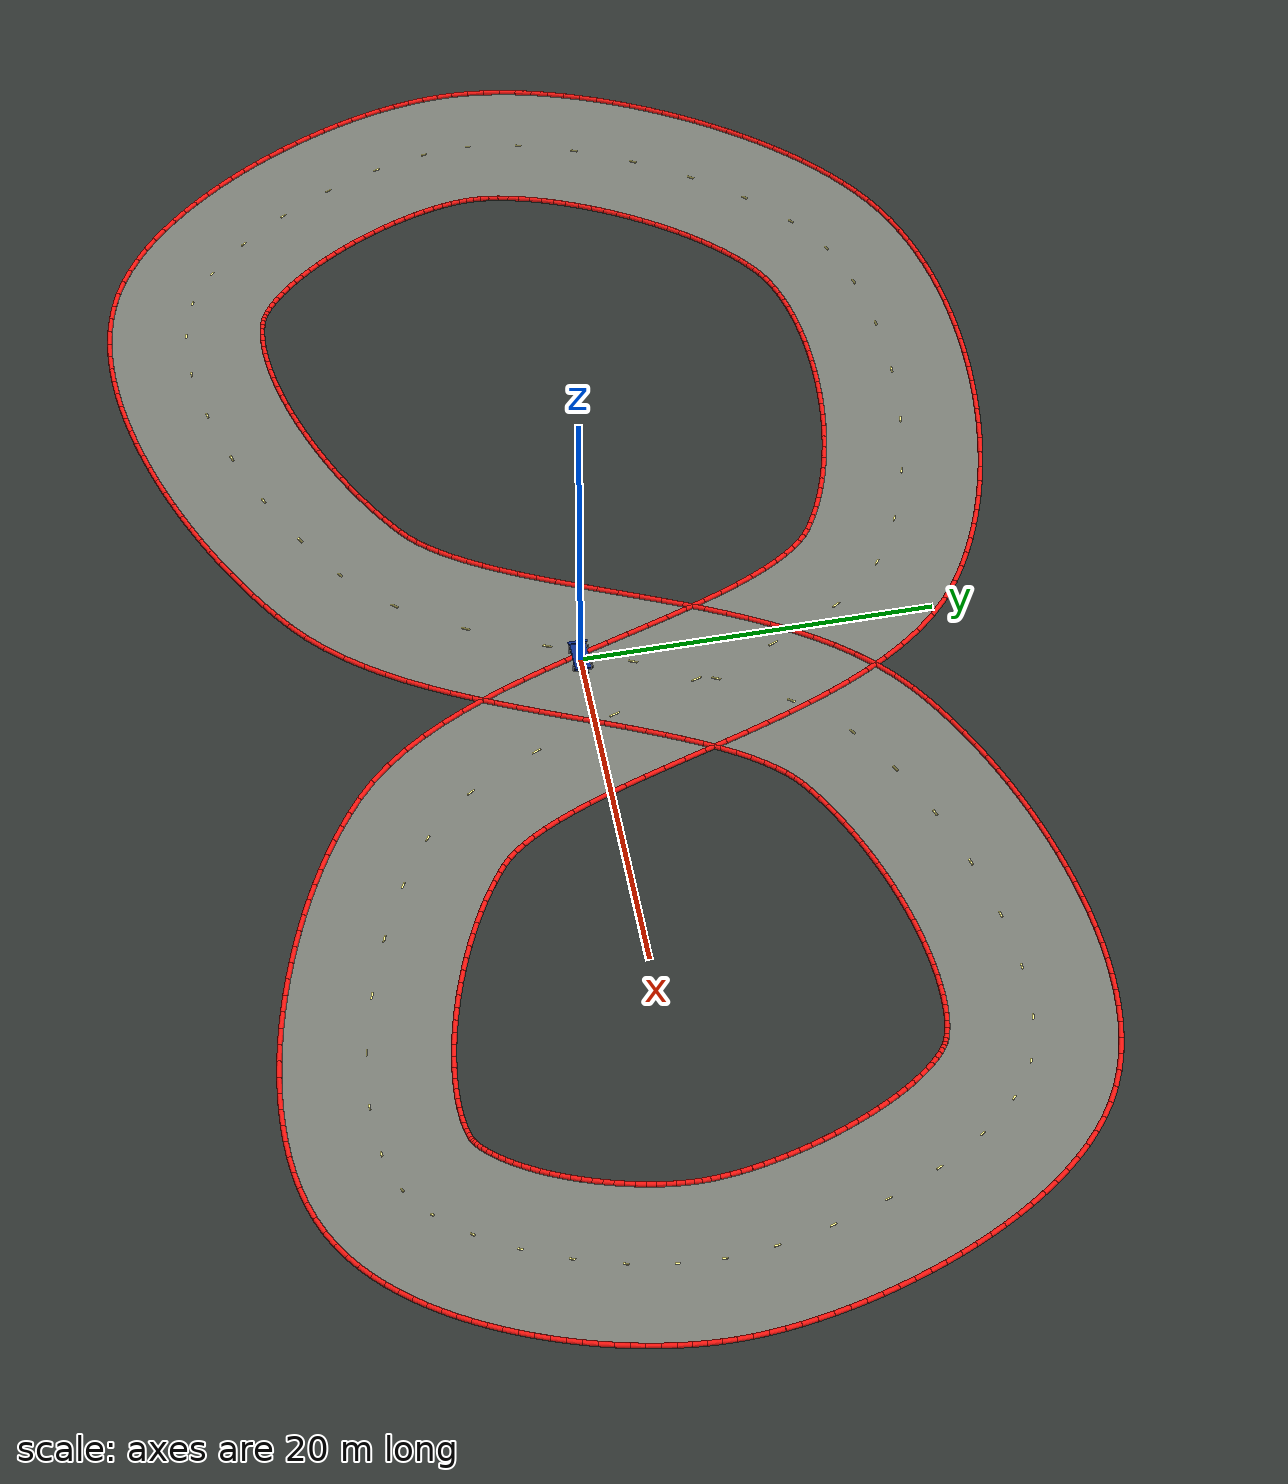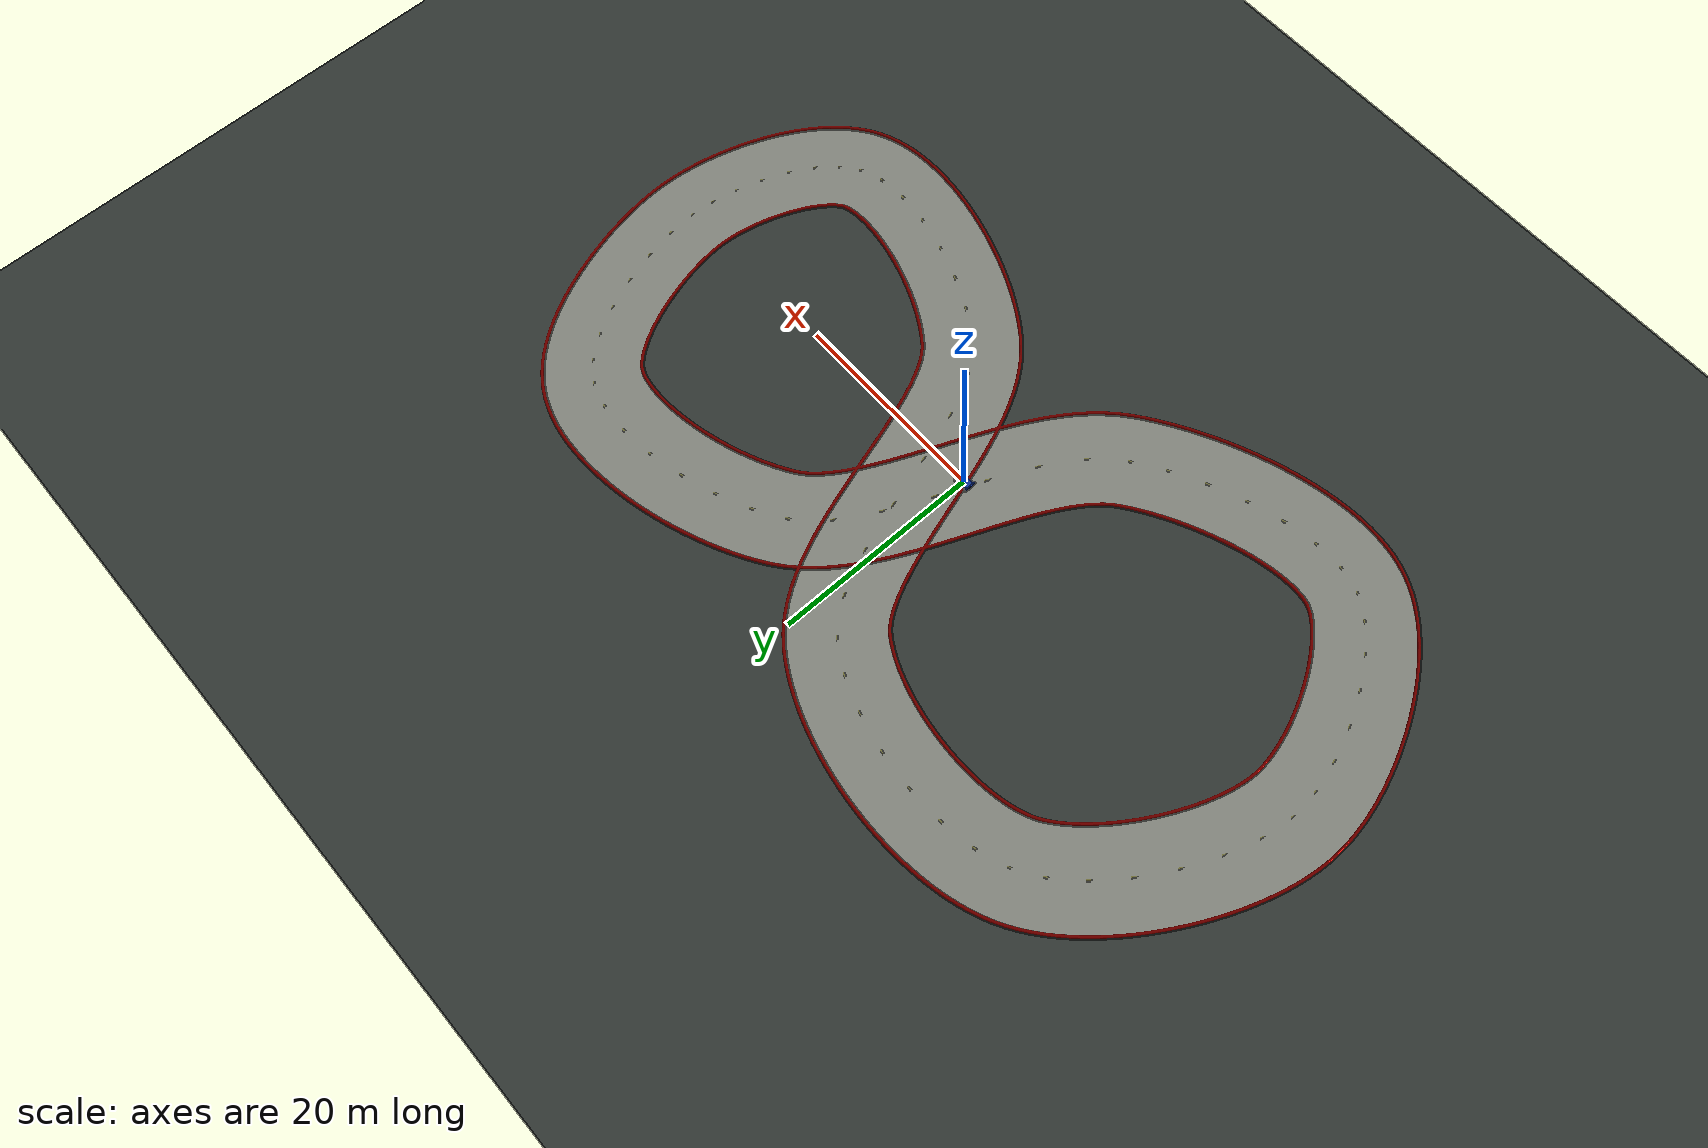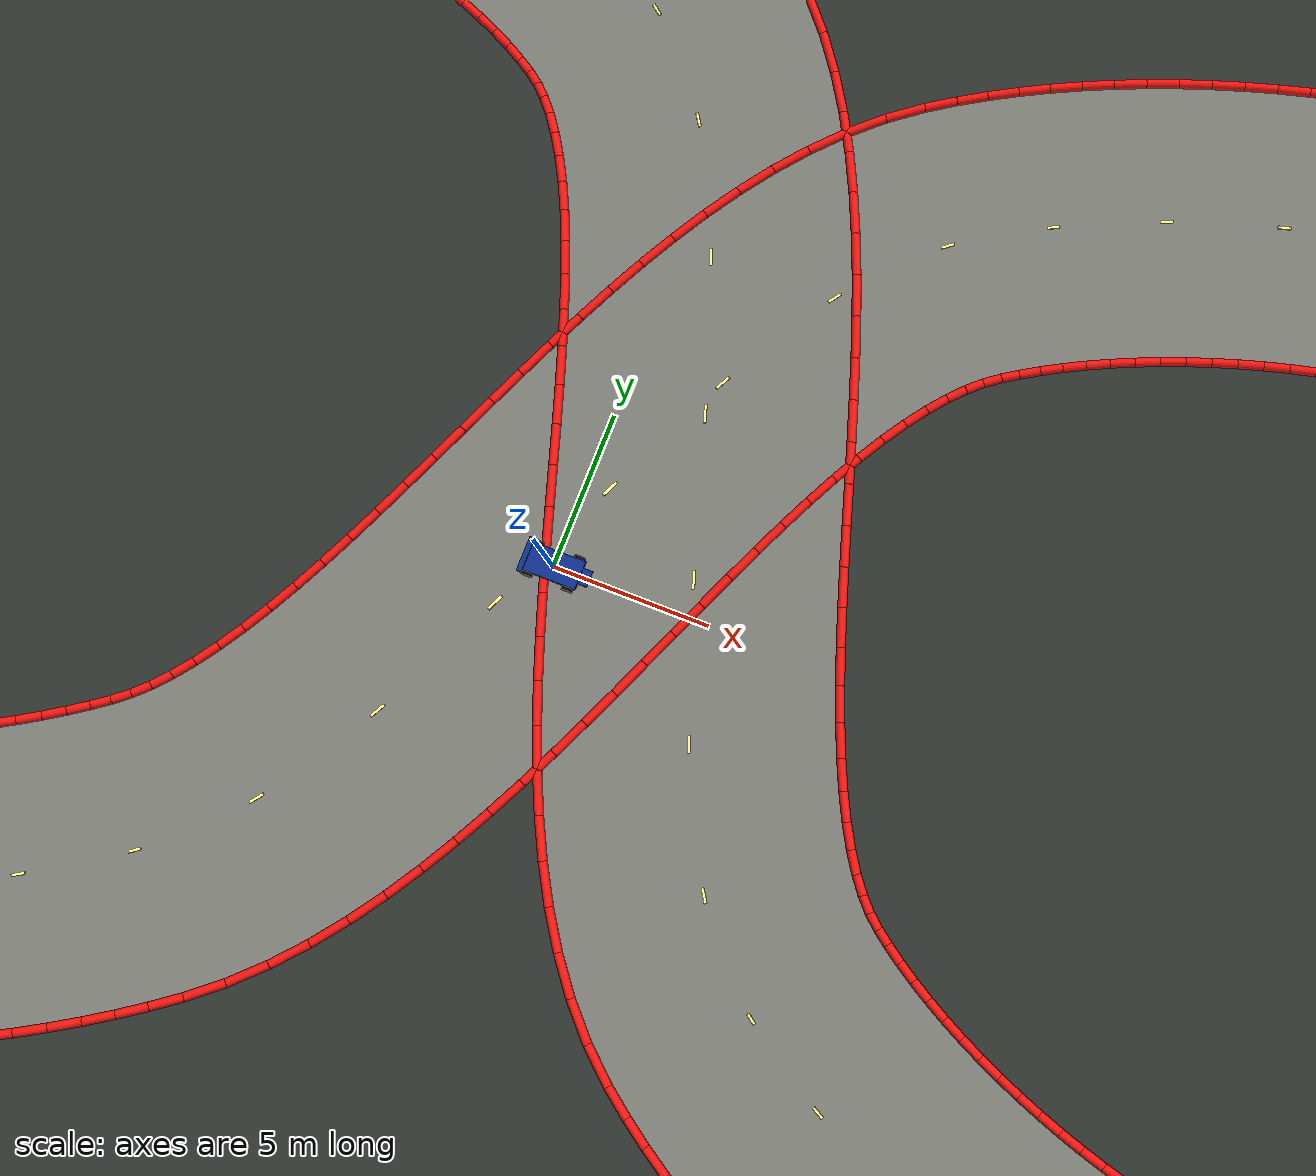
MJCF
<mujoco model="racesim_s_curve_world">
  <compiler angle="degree" autolimits="true"/>
  <option timestep="0.02" gravity="0 0 -9.81"/>
  <visual>
    <global offwidth="1280" offheight="960"/>
    <headlight ambient="0.35 0.35 0.35" diffuse="0.8 0.8 0.8"/>
  </visual>

  <include file="car.xml"/>
  <include file="s_curve_track.xml"/>

  <asset>
    <texture name="grid" type="2d" builtin="checker" width="512" height="512"
             rgb1="0.16 0.18 0.17" rgb2="0.20 0.22 0.21"/>
    <material name="ground" texture="grid" texrepeat="12 12" reflectance="0.05"/>
  </asset>

  <worldbody>
    <light name="sun" pos="0 0 30" dir="0 0 -1" diffuse="1.0 1.0 1.0" ambient="0.25 0.25 0.25"/>
    <geom name="ground" type="plane" size="90 90 0.1" material="ground"/>
    <camera name="topdown" pos="0 0 125" xyaxes="1 0 0 0 1 0" fovy="42"/>
    <camera name="follow" mode="trackcom" target="car" pos="-5 0 3" xyaxes="0 -1 0 0.5 0 0.866"/>
  </worldbody>
</mujoco>

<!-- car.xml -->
<mujoco model="simple_car">
  <default>
    <geom friction="1.2 0.02 0.001" density="600"/>
    <joint damping="0.1"/>
  </default>

  <asset>
    <material name="chassis_blue" rgba="0.05 0.18 0.55 1"/>
    <material name="wheel_dark" rgba="0.02 0.02 0.025 1"/>
  </asset>

  <worldbody>
    <body name="car" pos="0 0 0.28">
      <freejoint name="root"/>
      <geom name="chassis" type="box" size="0.9 0.45 0.12" material="chassis_blue"/>
      <geom name="nose" type="box" pos="0.75 0 0.02" size="0.45 0.25 0.06" material="chassis_blue"/>
      <geom name="rear_wing" type="box" pos="-0.85 0 0.22" size="0.08 0.55 0.04" material="chassis_blue"/>

      <body name="front_left_wheel" pos="0.65 0.48 -0.12">
        <joint name="front_left_spin" type="hinge" axis="0 1 0"/>
        <geom type="cylinder" size="0.18 0.08" euler="90 0 0" material="wheel_dark"/>
      </body>
      <body name="front_right_wheel" pos="0.65 -0.48 -0.12">
        <joint name="front_right_spin" type="hinge" axis="0 1 0"/>
        <geom type="cylinder" size="0.18 0.08" euler="90 0 0" material="wheel_dark"/>
      </body>
      <body name="rear_left_wheel" pos="-0.65 0.48 -0.12">
        <joint name="rear_left_spin" type="hinge" axis="0 1 0"/>
        <geom type="cylinder" size="0.18 0.08" euler="90 0 0" material="wheel_dark"/>
      </body>
      <body name="rear_right_wheel" pos="-0.65 -0.48 -0.12">
        <joint name="rear_right_spin" type="hinge" axis="0 1 0"/>
        <geom type="cylinder" size="0.18 0.08" euler="90 0 0" material="wheel_dark"/>
      </body>
    </body>
  </worldbody>
</mujoco>
